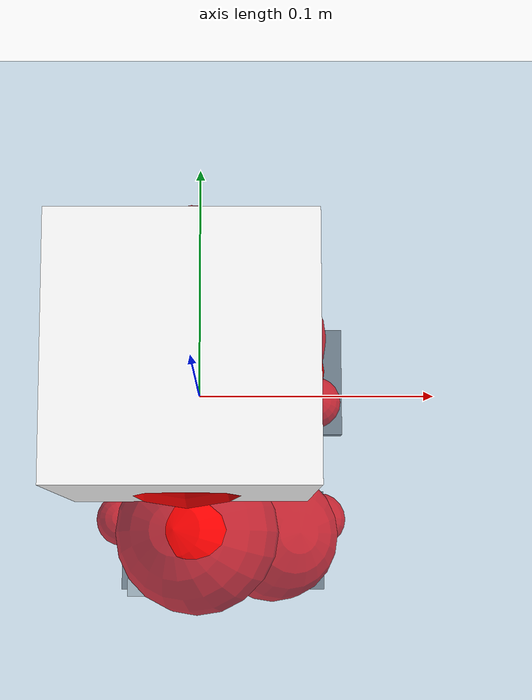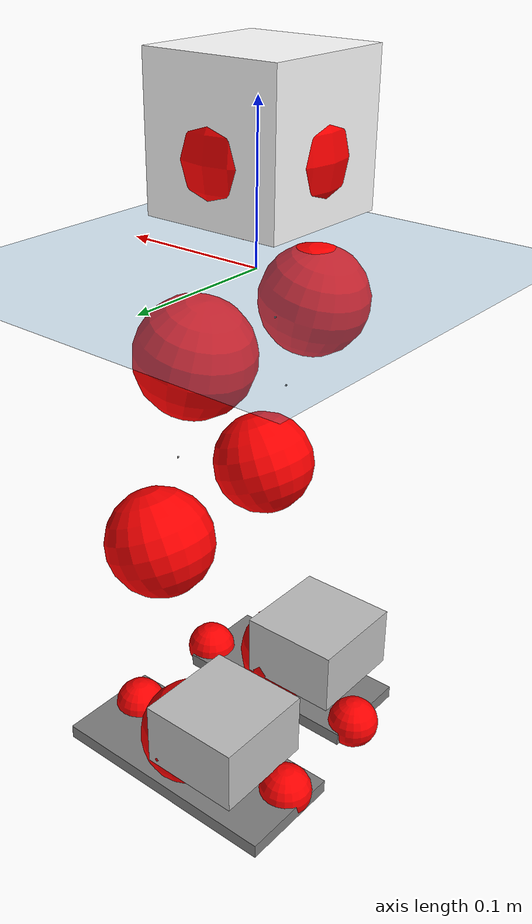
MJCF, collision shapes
<mujoco model="pi_12dof_release_v1">
  <compiler angle="radian" assetdir="assets" balanceinertia="true" inertiafromgeom="false"/>

  <option timestep="0.005" density="1.2" viscosity="2e-05"/>

  <size nkey="1"/>

  <visual>
    <quality shadowsize="8192"/>
    <map shadowclip="0.5"/>
  </visual>

  <default>
    <default class="/">
      <joint armature="0.01" damping="0.01" frictionloss="0.01"/>
      <geom contype="0" conaffinity="0" group="1" solref="-1000 -80"/>
      <site size="0.01 0.005 0.005" group="5"/>
      <general forcelimited="true" biastype="affine" gainprm="20" biasprm="0 -20 -0.5"/>
      <default class="foot">
        <geom size="0.0845 0.036 0.005" type="box" condim="6" group="4" priority="1" friction="0.9 0.2 0.2" solimp="0.015 1 0.005"/>
      </default>
      <default class="reward_collision_sphere">
        <geom group="5" rgba="1 0 0 1"/>
      </default>
    </default>
  </default>

  <asset>
    <texture type="skybox" colorspace="auto" name="//unnamed_texture_0" builtin="gradient" rgb1="0.95 0.95 0.95" rgb2="0.95 0.95 0.95" width="100" height="600"/>
    <texture type="2d" colorspace="auto" name="texplane" builtin="checker" rgb1="0.345 0.575 0.748" rgb2="0.345 0.575 0.748" markrgb="1 1 1" width="512" height="512"/>
    <material name="MatPlane" class="/" texture="texplane" texuniform="true" texrepeat="2 2" specular="0.9"/>
    <mesh name="baselink_1" class="/" file="baselink_1.STL"/>
    <mesh name="r_hip_pitch_link" class="/" file="r_hip_pitch_link.STL"/>
    <mesh name="r_hip_roll_link" class="/" file="r_hip_roll_link.STL"/>
    <mesh name="r_thigh_link" class="/" file="r_thigh_link.STL"/>
    <mesh name="r_calf_link" class="/" file="r_calf_link.STL"/>
    <mesh name="r_ankle_pitch_link" class="/" file="r_ankle_pitch_link.STL"/>
    <mesh name="r_ankle_roll_link" class="/" file="r_ankle_roll_link.STL"/>
    <mesh name="l_hip_pitch_link" class="/" file="l_hip_pitch_link.STL"/>
    <mesh name="l_hip_roll_link" class="/" file="l_hip_roll_link.STL"/>
    <mesh name="l_thigh_link" class="/" file="l_thigh_link.STL"/>
    <mesh name="l_calf_link" class="/" file="l_calf_link.STL"/>
    <mesh name="l_ankle_pitch_link" class="/" file="l_ankle_pitch_link.STL"/>
    <mesh name="l_ankle_roll_link" class="/" file="l_ankle_roll_link.STL"/>
  </asset>

  <worldbody>
    <geom name="floor" class="/" size="100 100 0.125" type="plane" group="0" material="MatPlane"/>
    <light name="toplight_shadow" class="/" pos="0 0 5" dir="0.0990148 0.0990148 -0.990148" type="directional" ambient="0.04 0.04 0.04" diffuse="0.55 0.55 0.55" specular="0.12 0.12 0.12"/>
    <light name="toplight_fill" class="/" pos="0 0 5" dir="0.0990148 0.0990148 -0.990148" type="directional" castshadow="false" ambient="0.04 0.04 0.04" diffuse="0.3 0.3 0.3" specular="0.08 0.08 0.08"/>
    <body name="trunk" pos="-0.00219718 -0.000838504 -0.000901871" quat="1 0.000647983 0.000408116 0.0004415">
      <inertial pos="0.00128566 0.000160903 0.0407684" quat="0.688859 0.00168173 0.00481093 0.724877" mass="1.68883" diaginertia="0.0111437 0.0018922 0.00454295"/>
      <joint name="//unnamed_joint_0" type="free"/>
      <geom name="//unnamed_geom_1" class="/" type="mesh" density="0" rgba="1 1 1 1" mesh="baselink_1"/>
      <geom name="//unnamed_geom_2" class="/" size="0.0461343 0.0461343 0.0461343" pos="0 0 0.0811194" type="box" rgba="1 1 1 1"/>
      <geom name="//unnamed_geom_3" class="reward_collision_sphere" size="0.0507477" pos="0 0 0.0709795"/>
      <site name="imu" class="/" pos="0.00629956 -0.0123883 0.00132806" size="0.00922686"/>
      <camera name="track" class="/" pos="0 -1.46352 0" quat="0.707107 0.707107 0 0" mode="trackcom"/>
      <camera name="ego_camera" class="/" pos="0.0766727 0 0.182519" quat="-0.5 -0.5 0.5 0.5"/>
      <body name="r_hip_pitch_link" pos="0.000389323 -0.0160936 -0.0341441" quat="0.99222 -0.00125201 -0.124488 -8.91836e-05">
        <inertial pos="-0.000113689 -0.0411401 0.000669651" quat="-0.0275691 0.706027 -0.0208281 0.707342" mass="0.300176" diaginertia="0.000125199 2.11874e-05 9.3201e-05"/>
        <joint name="r_hip_pitch_joint" class="/" pos="0 0 0" axis="0.00492664 -0.999988 -0.000234992" range="-1.736 1.24427" armature="0.00871088" damping="0.00432598" frictionloss="0.00884708"/>
        <geom name="//unnamed_geom_4" class="/" type="mesh" density="0" rgba="0.75294 0.75294 0.75294 1" mesh="r_hip_pitch_link"/>
        <geom name="//unnamed_geom_5" class="/" size="0.000461343 0.000461343 0.000461343" type="box" rgba="0.75294 0.75294 0.75294 1"/>
        <body name="r_hip_roll_link" pos="-4.51451e-05 -0.0402419 0.000152224" quat="1 -0.000208181 -0.000143926 0.000147168">
          <inertial pos="-0.00117258 -0.00289115 -0.0644564" quat="0.70684 -0.0775419 -0.0857957 0.697857" mass="0.310543" diaginertia="0.000370197 5.7754e-05 0.000136486"/>
          <joint name="r_hip_roll_joint" class="/" pos="0 0 0" axis="-0.999939 0.0110148 0.000518225" range="-0.132611 0.552832" armature="0.0090111" damping="0.0118032" frictionloss="0.00947017"/>
          <geom name="//unnamed_geom_6" class="/" type="mesh" density="0" rgba="0.75294 0.75294 0.75294 1" mesh="r_hip_roll_link"/>
          <geom name="//unnamed_geom_7" class="/" size="0.000461343 0.000461343 0.000461343" type="box" rgba="0.75294 0.75294 0.75294 1"/>
          <geom name="//unnamed_geom_8" class="reward_collision_sphere" size="0.0369074"/>
          <body name="r_thigh_link" pos="0.00209822 0.00300788 -0.0677942" quat="1 -8.50953e-06 9.4935e-05 -0.00019969">
            <inertial pos="0.00112496 -0.000725362 -0.0462038" quat="0.736852 0.676054 0.000302596 -0.000569056" mass="0.0920888" diaginertia="0.00014398 2.02367e-05 6.23454e-05"/>
            <joint name="r_thigh_joint" class="/" pos="0 0 0" axis="0.00770552 -0.00878439 -0.999932" stiffness="0.00896885" range="-0.317182 0.593927" armature="0.00870312" damping="0" frictionloss="0.00809233"/>
            <geom name="//unnamed_geom_9" class="/" type="mesh" density="0" rgba="0.75294 0.75294 0.75294 1" mesh="r_thigh_link"/>
            <geom name="//unnamed_geom_10" class="/" size="0.000461343 0.000461343 0.000461343" type="box" rgba="0.75294 0.75294 0.75294 1"/>
            <body name="r_calf_link" pos="0.00164014 0.000334879 -0.0686912" quat="0.947651 -2.11119e-05 0.319308 -1.55073e-05">
              <inertial pos="0.000391261 -0.00258458 -0.0708646" quat="0.999875 -0.0127988 -0.00909602 0.00195539" mass="0.662963" diaginertia="0.0040122 0.000760711 0.000190888"/>
              <joint name="r_calf_joint" class="/" pos="0 0 0" axis="0.000762984 -0.999969 0.00781351" range="-1.5959 0.644188" armature="0.0079994" damping="0.0054852" frictionloss="0.00898496"/>
              <geom name="//unnamed_geom_11" class="/" type="mesh" density="0" rgba="0.75294 0.75294 0.75294 1" mesh="r_calf_link"/>
              <geom name="//unnamed_geom_12" class="/" size="0.000461343 0.000461343 0.000461343" type="box" rgba="0.75294 0.75294 0.75294 1"/>
              <geom name="//unnamed_geom_13" class="reward_collision_sphere" size="0.0369074"/>
              <body name="r_ankle_pitch_link" pos="0.00166215 0.000945785 -0.143978" quat="0.980092 -0.000214934 -0.198543 -6.41095e-06">
                <inertial pos="0.00491131 0.00256242 -0.0028769" quat="0.0101195 0.71095 0.00504653 0.703152" mass="0.14172" diaginertia="0.000350514 4.81762e-05 0.000132923"/>
                <joint name="r_ankle_pitch_joint" class="/" pos="0 0 0" axis="0.00100669 -0.999998 -0.00150384" range="-1.30554 0.552592" armature="0.00917516" damping="0.00651268" frictionloss="0.0104739"/>
                <geom name="//unnamed_geom_14" class="/" type="mesh" density="0" rgba="0.75294 0.75294 0.75294 1" mesh="r_ankle_pitch_link"/>
                <geom name="//unnamed_geom_15" class="/" size="0.0359847 0.0369074 0.0230671" type="box" rgba="0.75294 0.75294 0.75294 1"/>
                <body name="r_ankle_roll_link" pos="0.0770461 0.000965616 -0.00139475" quat="1 1.68837e-05 -0.000162075 0.0001085">
                  <inertial pos="-0.0250504 0.00069135 -0.0123125" quat="0.563886 0.428858 0.43032 0.559408" mass="0.383115" diaginertia="0.00122823 0.000216533 0.000284492"/>
                  <joint name="r_ankle_roll_joint" class="/" pos="0 0 0" axis="-0.999897 -0.00309524 0.0140231" range="-0.112536 0.09682" armature="0.00795761" damping="0.0210956" frictionloss="0.00865332"/>
                  <geom name="//unnamed_geom_16" class="/" type="mesh" density="0" rgba="0.75294 0.75294 0.75294 1" mesh="r_ankle_roll_link"/>
                  <geom name="//unnamed_geom_17" class="/" type="mesh" rgba="0.75294 0.75294 0.75294 1" mesh="r_ankle_roll_link"/>
                  <geom name="right_foot" class="foot" size="0.0706379 0.0341542 0.00474935" pos="-0.0521374 0 -0.0446157"/>
                  <geom name="//unnamed_geom_19" class="reward_collision_sphere" size="0.0369074" pos="-0.0511151 0 -0.0202799"/>
                  <geom name="//unnamed_geom_20" class="reward_collision_sphere" size="0.0184537" pos="0.0153345 0.0146352 -0.0405597"/>
                  <geom name="//unnamed_geom_21" class="reward_collision_sphere" size="0.0184537" pos="-0.122676 0.0146352 -0.0405597"/>
                  <site name="right_foot" class="foot" pos="-0.0521374 0 -0.0446157" size="0.00922686"/>
                </body>
              </body>
            </body>
          </body>
        </body>
      </body>
      <body name="l_hip_pitch_link" pos="0.000520933 0.0164121 -0.035895" quat="0.992166 0.000105787 -0.124924 2.97532e-05">
        <inertial pos="0.000565988 0.039855 -0.00289707" quat="-0.0394093 0.703506 0.0274219 0.709066" mass="0.31904" diaginertia="0.000149295 2.1675e-05 0.000108742"/>
        <joint name="l_hip_pitch_joint" class="/" pos="0 0 0" axis="0.00344065 0.999994 0.000362255" range="-1.19998 1.75143" armature="0.0103837" damping="0.00816152" frictionloss="0.00964486"/>
        <geom name="//unnamed_geom_22" class="/" type="mesh" density="0" rgba="0.75294 0.75294 0.75294 1" mesh="l_hip_pitch_link"/>
        <geom name="//unnamed_geom_23" class="/" size="0.000461343 0.000461343 0.000461343" type="box" rgba="0.75294 0.75294 0.75294 1"/>
        <body name="l_hip_roll_link" pos="-0.000676566 0.0420219 -0.000438196" quat="1 -5.11553e-05 0.000291488 0.000199493">
          <inertial pos="-0.00420374 -0.00146922 -0.064247" quat="0.699315 -0.081329 -0.0900384 0.704441" mass="0.309931" diaginertia="0.000360322 5.87927e-05 0.000133366"/>
          <joint name="l_hip_roll_joint" class="/" pos="0 0 0" axis="-0.999997 -0.0022528 -0.00107226" range="-0.554285 0.166752" armature="0.00878089" damping="0" frictionloss="0.00918747"/>
          <geom name="//unnamed_geom_24" class="/" type="mesh" density="0" rgba="0.75294 0.75294 0.75294 1" mesh="l_hip_roll_link"/>
          <geom name="//unnamed_geom_25" class="/" size="0.000461343 0.000461343 0.000461343" type="box" rgba="0.75294 0.75294 0.75294 1"/>
          <geom name="//unnamed_geom_26" class="reward_collision_sphere" size="0.0369074"/>
          <body name="l_thigh_link" pos="-0.00214378 -5.40306e-05 -0.0727138" quat="1 8.93045e-05 -4.57989e-05 3.77491e-05">
            <inertial pos="0.00158257 -0.00315865 -0.0462106" quat="0.667743 0.744354 -0.00527059 -0.00537327" mass="0.0856029" diaginertia="0.00013948 1.97994e-05 6.21369e-05"/>
            <joint name="l_thigh_joint" class="/" pos="0 0 0" axis="-4.8703e-05 0.00169015 -0.999999" range="-0.600667 0.276503" armature="0.00902168" damping="0.000827618" frictionloss="0.0095323"/>
            <geom name="//unnamed_geom_27" class="/" type="mesh" density="0" rgba="0.75294 0.75294 0.75294 1" mesh="l_thigh_link"/>
            <geom name="//unnamed_geom_28" class="/" size="0.000461343 0.000461343 0.000461343" type="box" rgba="0.75294 0.75294 0.75294 1"/>
            <body name="l_calf_link" pos="-0.000336516 0.00115421 -0.0704346" quat="0.947609 8.55745e-05 0.319433 -0.000134159">
              <inertial pos="0.000323787 0.00481755 -0.0734339" quat="0.999982 0.00298611 -0.000486382 0.00514722" mass="0.621249" diaginertia="0.00385141 0.000719849 0.000181388"/>
              <joint name="l_calf_joint" class="/" pos="0 0 0" axis="-0.00101994 0.999996 -0.00278749" stiffness="0.000410399" range="-0.598589 1.70743" armature="0.00922715" damping="0.00908375" frictionloss="0.00902202"/>
              <geom name="//unnamed_geom_29" class="/" type="mesh" density="0" rgba="0.75294 0.75294 0.75294 1" mesh="l_calf_link"/>
              <geom name="//unnamed_geom_30" class="/" size="0.000461343 0.000461343 0.000461343" type="box" rgba="0.75294 0.75294 0.75294 1"/>
              <geom name="//unnamed_geom_31" class="reward_collision_sphere" size="0.0369074"/>
              <body name="l_ankle_pitch_link" pos="-0.000474199 0.000726924 -0.139426" quat="0.980067 4.96983e-05 -0.198669 -1.86252e-05">
                <inertial pos="0.0032084 0.00144291 -3.54191e-05" quat="-0.00197793 0.706853 0.00264331 0.707353" mass="0.129346" diaginertia="0.000334467 4.51921e-05 0.000128235"/>
                <joint name="l_ankle_pitch_joint" class="/" pos="0 0 0" axis="0.000122049 1 1.1781e-05" range="-0.559764 1.31921" armature="0.00813932" damping="0.0135578" frictionloss="0.00873836"/>
                <geom name="//unnamed_geom_32" class="/" type="mesh" density="0" rgba="0.75294 0.75294 0.75294 1" mesh="l_ankle_pitch_link"/>
                <geom name="//unnamed_geom_33" class="/" size="0.0359847 0.0369074 0.0230671" type="box" rgba="0.75294 0.75294 0.75294 1"/>
                <body name="l_ankle_roll_link" pos="0.0797795 0.000199894 0.00151505" quat="1 -0.000108359 0.000138445 -0.00056838">
                  <inertial pos="-0.0253098 -0.000490846 -0.0143883" quat="0.557638 0.428429 0.435461 0.562016" mass="0.385626" diaginertia="0.00124905 0.000211452 0.000296934"/>
                  <joint name="l_ankle_roll_joint" class="/" pos="0 0 0" axis="-0.999991 -0.00269121 0.00317874" stiffness="0.000103635" range="-0.163483 0.153146" armature="0.0103421" damping="0.00457488" frictionloss="0.00924001"/>
                  <geom name="//unnamed_geom_34" class="/" type="mesh" density="0" rgba="0.75294 0.75294 0.75294 1" mesh="l_ankle_roll_link"/>
                  <geom name="//unnamed_geom_35" class="/" type="mesh" rgba="0.75294 0.75294 0.75294 1" mesh="l_ankle_roll_link"/>
                  <geom name="left_foot" class="foot" size="0.0866577 0.0377323 0.00502324" pos="-0.0521374 0 -0.0446157"/>
                  <geom name="//unnamed_geom_37" class="reward_collision_sphere" size="0.0369074" pos="-0.0511151 0 -0.0202799"/>
                  <geom name="//unnamed_geom_38" class="reward_collision_sphere" size="0.0184537" pos="0.0153345 -0.0146352 -0.0405597"/>
                  <geom name="//unnamed_geom_39" class="reward_collision_sphere" size="0.0184537" pos="-0.122676 -0.0146352 -0.0405597"/>
                  <site name="left_foot" class="foot" pos="-0.0521374 0 -0.0446157" size="0.00922686"/>
                </body>
              </body>
            </body>
          </body>
        </body>
      </body>
    </body>
  </worldbody>

  <contact>
    <pair class="/" geom1="floor" geom2="right_foot" name="//unnamed_contact_1"/>
    <pair class="/" geom1="floor" geom2="left_foot" name="//unnamed_contact_0"/>
  </contact>

  <actuator>
    <general name="r_hip_pitch_joint" class="/" joint="r_hip_pitch_joint" forcerange="-19.441 19.441" gainprm="18.3934" biasprm="0 -18.3934 -0.460664"/>
    <general name="r_hip_roll_joint" class="/" joint="r_hip_roll_joint" forcerange="-17.4184 17.4184" gainprm="18.3934" biasprm="0 -18.3934 -0.460664"/>
    <general name="r_thigh_joint" class="/" joint="r_thigh_joint" forcerange="-20.2071 20.2071" gainprm="18.3934" biasprm="0 -18.3934 -0.460664"/>
    <general name="r_calf_joint" class="/" joint="r_calf_joint" forcerange="-19.7245 19.7245" gainprm="18.3934" biasprm="0 -18.3934 -0.460664"/>
    <general name="r_ankle_pitch_joint" class="/" joint="r_ankle_pitch_joint" forcerange="-19.1778 19.1778" gainprm="18.3934" biasprm="0 -18.3934 -0.460664"/>
    <general name="r_ankle_roll_joint" class="/" joint="r_ankle_roll_joint" forcerange="-20.1877 20.1877" gainprm="18.3934" biasprm="0 -18.3934 -0.460664"/>
    <general name="l_hip_pitch_joint" class="/" joint="l_hip_pitch_joint" forcerange="-18.5442 18.5442" gainprm="18.3934" biasprm="0 -18.3934 -0.460664"/>
    <general name="l_hip_roll_joint" class="/" joint="l_hip_roll_joint" forcerange="-21.3391 21.3391" gainprm="18.3934" biasprm="0 -18.3934 -0.460664"/>
    <general name="l_thigh_joint" class="/" joint="l_thigh_joint" forcerange="-17.3865 17.3865" gainprm="18.3934" biasprm="0 -18.3934 -0.460664"/>
    <general name="l_calf_joint" class="/" joint="l_calf_joint" forcerange="-19.162 19.162" gainprm="18.3934" biasprm="0 -18.3934 -0.460664"/>
    <general name="l_ankle_pitch_joint" class="/" joint="l_ankle_pitch_joint" forcerange="-20.5021 20.5021" gainprm="18.3934" biasprm="0 -18.3934 -0.460664"/>
    <general name="l_ankle_roll_joint" class="/" joint="l_ankle_roll_joint" forcerange="-21.1068 21.1068" gainprm="18.3934" biasprm="0 -18.3934 -0.460664"/>
  </actuator>

  <sensor>
    <gyro site="imu" name="imu_angular_velocity"/>
    <velocimeter site="imu" name="imu_linear_velocity"/>
    <framelinvel objtype="site" objname="left_foot" name="left_foot_global_linear_velocity"/>
    <framelinvel objtype="site" objname="right_foot" name="right_foot_global_linear_velocity"/>
  </sensor>

  <keyframe>
    <key name="home" qpos="0 0 0.291 1 0 0 0 0.4 0 0 -0.8 0.4 0 -0.4 0 0 0.8 -0.4 0"/>
  </keyframe>
</mujoco>
